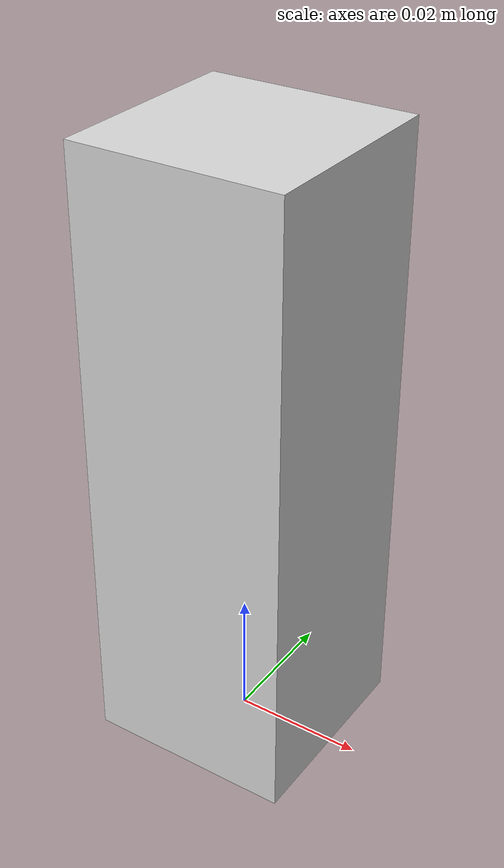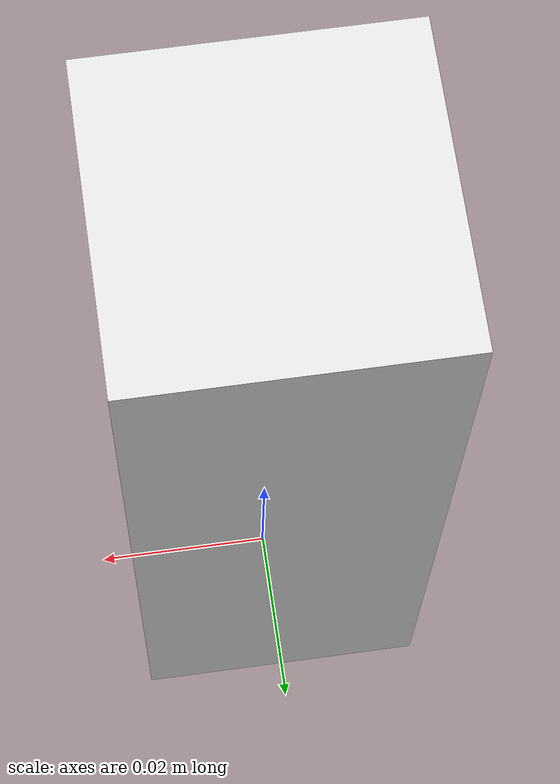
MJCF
<mujoco model="white_long_box">
  <compiler angle="radian" meshdir="assets" autolimits="true" />
  <option cone="elliptic" impratio="10" />
  <default>
    <default class="white_long_box">
      <default class="visual">
        <geom group="2" contype="0" conaffinity="0" />
      </default>
      <default class="collision">
        <geom group="3" condim="3" margin="0.001" />
      </default>
    </default>
  </default>
  <asset>
    <mesh name="white_long_quad_cylinder" file="long_quad_cylinder.obj"   />
  </asset>
  <worldbody>
    <body name="white_long_box_body" childclass="white_long_box">
      <geom type="mesh" mesh="white_long_quad_cylinder" class="visual" name="white_long_box_visual_geom" rgba="0.85 0.85 0.85 1" />
      <geom type="mesh" mesh="white_long_quad_cylinder" class="collision" name="white_long_box_collision_geom" friction="1.5 1.2 1" density="50" solimp="0.95 0.99" solref="0.004 1" />
      <joint type="free" name="white_long_box_joint" />
    </body>
  </worldbody>
</mujoco>
